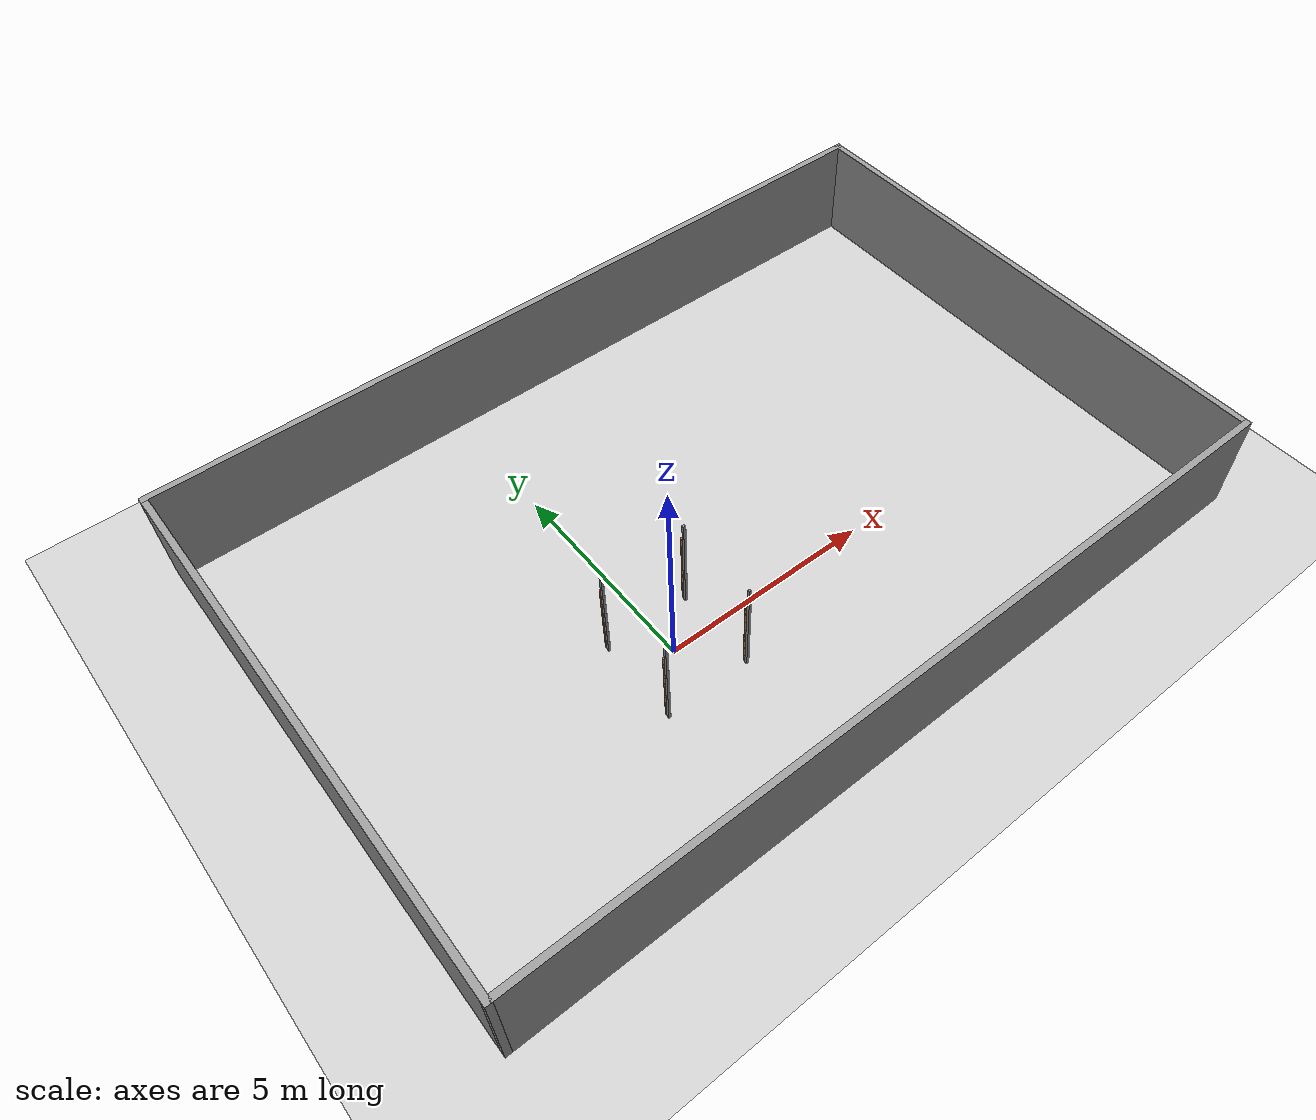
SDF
<sdf version="1.7">
 <world name="default">
  <model name="ground_plane">
   <static>1</static>
   <link name="link">
    <collision name="collision">
     <geometry><plane><normal>0 0 1</normal><size>100 100</size></plane></geometry>
     <surface><friction><ode><mu>100</mu><mu2>50</mu2></ode></friction></surface>
    </collision>
    <visual name="visual">
     <cast_shadows>0</cast_shadows>
     <geometry><plane><normal>0 0 1</normal><size>100 100</size></plane></geometry>
     <material>
      <script><uri>file://media/materials/scripts/gazebo.material</uri><name>Gazebo/Grey</name></script>
     </material>
    </visual>
   </link>
  </model>
  <model name="recinto">
   <frame name="recinto::__model__" attached_to="recinto::Wall_12">
    <pose relative_to="__model__">2.47399 1.90374 0 0 -0 0</pose>
   </frame>
   <link name="recinto::Wall_12">
    <collision name="Wall_12_Collision">
     <geometry><box><size>19 0.15 2.5</size></box></geometry>
     <pose>0 0 1.25 0 -0 0</pose>
    </collision>
    <visual name="Wall_12_Visual">
     <pose>0 0 1.25 0 -0 0</pose>
     <geometry><box><size>19 0.15 2.5</size></box></geometry>
     <material>
      <script><uri>file://media/materials/scripts/gazebo.material</uri><name>Gazebo/Grey</name></script>
      <ambient>1 1 1 1</ambient>
     </material>
     <meta><layer>0</layer></meta>
    </visual>
    <pose relative_to="recinto::__model__">-0 6.3 0 0 -0 0</pose>
   </link>
   <link name="recinto::Wall_15">
    <collision name="Wall_15_Collision">
     <geometry><box><size>12.75 0.15 2.5</size></box></geometry>
     <pose>0 0 1.25 0 -0 0</pose>
    </collision>
    <visual name="Wall_15_Visual">
     <pose>0 0 1.25 0 -0 0</pose>
     <geometry><box><size>12.75 0.15 2.5</size></box></geometry>
     <material>
      <script><uri>file://media/materials/scripts/gazebo.material</uri><name>Gazebo/Grey</name></script>
      <ambient>1 1 1 1</ambient>
     </material>
     <meta><layer>0</layer></meta>
    </visual>
    <pose relative_to="recinto::__model__">9.425 0 0 0 -0 -1.5708</pose>
   </link>
   <link name="recinto::Wall_16">
    <collision name="Wall_16_Collision">
     <geometry><box><size>19 0.15 2.5</size></box></geometry>
     <pose>0 0 1.25 0 -0 0</pose>
    </collision>
    <visual name="Wall_16_Visual">
     <pose>0 0 1.25 0 -0 0</pose>
     <geometry><box><size>19 0.15 2.5</size></box></geometry>
     <material>
      <script><uri>file://media/materials/scripts/gazebo.material</uri><name>Gazebo/Grey</name></script>
      <ambient>1 1 1 1</ambient>
     </material>
     <meta><layer>0</layer></meta>
    </visual>
    <pose relative_to="recinto::__model__">-0 -6.3 0 0 -0 3.14159</pose>
   </link>
   <link name="recinto::Wall_17">
    <collision name="Wall_17_Collision">
     <geometry><box><size>12.75 0.15 2.5</size></box></geometry>
     <pose>0 0 1.25 0 -0 0</pose>
    </collision>
    <visual name="Wall_17_Visual">
     <pose>0 0 1.25 0 -0 0</pose>
     <geometry><box><size>12.75 0.15 2.5</size></box></geometry>
     <material>
      <script><uri>file://media/materials/scripts/gazebo.material</uri><name>Gazebo/Grey</name></script>
      <ambient>1 1 1 1</ambient>
     </material>
     <meta><layer>0</layer></meta>
    </visual>
    <pose relative_to="recinto::__model__">-9.425 0 0 0 -0 1.5708</pose>
   </link>
   <static>1</static>
  </model>
  <model name="vineyard1_clone_0">
   <pose>-1 -1 0 0 -0 0</pose>
   <frame name="vineyard::__model__" attached_to="vineyard::link">
    <pose relative_to="__model__">0 0 0 0 -0 0</pose>
   </frame>
   <link name="vineyard::link">
    <pose relative_to="vineyard::__model__">0 -0.042492 1.02106 0 -0 0</pose>
    <inertial>
     <mass>0.0175</mass>
     <inertia>
      <ixx>9.75e-06</ixx>
      <ixy>0</ixy>
      <ixz>0</ixz>
      <iyy>9.75e-06</iyy>
      <iyz>0</iyz>
      <izz>8.3e-07</izz>
     </inertia>
    </inertial>
    <visual name="visual">
     <geometry><cylinder><radius>0.025</radius><length>2</length></cylinder></geometry>
     <material>
      <script><uri>file://media/materials/scripts/gazebo.material</uri><name>Gazebo/Wood</name></script>
      <shader type="pixel"><normal_map>__default__</normal_map></shader>
      <ambient>1 1 1 1</ambient>
      <diffuse>1 1 1 1</diffuse>
      <specular>0.2 0.2 0.2 1</specular>
      <emissive>0 0 0 1</emissive>
     </material>
    </visual>
    <collision name="collision">
     <geometry><cylinder><radius>0.025</radius><length>2</length></cylinder></geometry>
     <surface>
      <friction>
       <ode><mu>1</mu><mu2>1</mu2><fdir1>0 0 0</fdir1><slip1>0</slip1><slip2>0</slip2></ode>
       <torsional>
        <coefficient>1</coefficient>
        <patch_radius>0</patch_radius>
        <surface_radius>0.01</surface_radius>
        <use_patch_radius>0</use_patch_radius>
        <ode><slip>0</slip></ode>
       </torsional>
      </friction>
      <bounce><restitution_coefficient>0</restitution_coefficient><threshold>1e+06</threshold></bounce>
      <contact>
       <collide_without_contact>0</collide_without_contact>
       <collide_without_contact_bitmask>1</collide_without_contact_bitmask>
       <collide_bitmask>1</collide_bitmask>
       <ode>
        <soft_cfm>0</soft_cfm>
        <soft_erp>0.2</soft_erp>
        <kp>100000</kp>
        <kd>100</kd>
        <max_vel>100</max_vel>
        <min_depth>0.001</min_depth>
       </ode>
       <bullet>
        <split_impulse>1</split_impulse>
        <split_impulse_penetration_threshold>-0.01</split_impulse_penetration_threshold>
        <soft_cfm>0</soft_cfm>
        <soft_erp>0.2</soft_erp>
        <kp>100000</kp>
        <kd>100</kd>
       </bullet>
      </contact>
     </surface>
    </collision>
   </link>
   <link name="vineyard::link_0">
    <inertial>
     <mass>1</mass>
     <inertia>
      <ixx>0.166667</ixx>
      <ixy>0</ixy>
      <ixz>0</ixz>
      <iyy>0.166667</iyy>
      <iyz>0</iyz>
      <izz>0.166667</izz>
     </inertia>
    </inertial>
    <pose relative_to="vineyard::__model__">-0.005498 -0.128915 1.26447 -1.3e-05 1.5e-05 -0</pose>
    <visual name="visual">
     <geometry><box><size>0.055 0.06 2.5</size></box></geometry>
     <material>
      <lighting>1</lighting>
      <script><uri>file://media/materials/scripts/gazebo.material</uri><name>Gazebo/Grey</name></script>
      <shader type="pixel"><normal_map>__default__</normal_map></shader>
      <ambient>0.3 0.3 0.3 1</ambient>
      <diffuse>0.7 0.7 0.7 1</diffuse>
      <specular>0.01 0.01 0.01 1</specular>
      <emissive>0 0 0 1</emissive>
     </material>
    </visual>
    <collision name="collision">
     <geometry><box><size>0.055 0.06 2.5</size></box></geometry>
     <surface>
      <friction>
       <ode><mu>1</mu><mu2>1</mu2><fdir1>0 0 0</fdir1><slip1>0</slip1><slip2>0</slip2></ode>
       <torsional>
        <coefficient>1</coefficient>
        <patch_radius>0</patch_radius>
        <surface_radius>0</surface_radius>
        <use_patch_radius>1</use_patch_radius>
        <ode><slip>0</slip></ode>
       </torsional>
      </friction>
      <bounce><restitution_coefficient>0</restitution_coefficient><threshold>1e+06</threshold></bounce>
      <contact>
       <collide_without_contact>0</collide_without_contact>
       <collide_without_contact_bitmask>1</collide_without_contact_bitmask>
       <collide_bitmask>1</collide_bitmask>
       <ode>
        <soft_cfm>0</soft_cfm>
        <soft_erp>0.2</soft_erp>
        <kp>1e+13</kp>
        <kd>1</kd>
        <max_vel>0.01</max_vel>
        <min_depth>0</min_depth>
       </ode>
       <bullet>
        <split_impulse>1</split_impulse>
        <split_impulse_penetration_threshold>-0.01</split_impulse_penetration_threshold>
        <soft_cfm>0</soft_cfm>
        <soft_erp>0.2</soft_erp>
        <kp>1e+13</kp>
        <kd>1</kd>
       </bullet>
      </contact>
     </surface>
    </collision>
   </link>
   <static>1</static>
  </model>
  <model name="vineyard1_clone_1">
   <pose>1 -1 0 0 -0 0</pose>
   <frame name="vineyard::__model__" attached_to="vineyard::link">
    <pose relative_to="__model__">0 0 0 0 -0 0</pose>
   </frame>
   <link name="vineyard::link">
    <pose relative_to="vineyard::__model__">0 -0.042492 1.02106 0 -0 0</pose>
    <inertial>
     <mass>0.0175</mass>
     <inertia>
      <ixx>9.75e-06</ixx>
      <ixy>0</ixy>
      <ixz>0</ixz>
      <iyy>9.75e-06</iyy>
      <iyz>0</iyz>
      <izz>8.3e-07</izz>
     </inertia>
    </inertial>
    <visual name="visual">
     <geometry><cylinder><radius>0.025</radius><length>2</length></cylinder></geometry>
     <material>
      <script><uri>file://media/materials/scripts/gazebo.material</uri><name>Gazebo/Wood</name></script>
      <shader type="pixel"><normal_map>__default__</normal_map></shader>
      <ambient>1 1 1 1</ambient>
      <diffuse>1 1 1 1</diffuse>
      <specular>0.2 0.2 0.2 1</specular>
      <emissive>0 0 0 1</emissive>
     </material>
    </visual>
    <collision name="collision">
     <geometry><cylinder><radius>0.025</radius><length>2</length></cylinder></geometry>
     <surface>
      <friction>
       <ode><mu>1</mu><mu2>1</mu2><fdir1>0 0 0</fdir1><slip1>0</slip1><slip2>0</slip2></ode>
       <torsional>
        <coefficient>1</coefficient>
        <patch_radius>0</patch_radius>
        <surface_radius>0.01</surface_radius>
        <use_patch_radius>0</use_patch_radius>
        <ode><slip>0</slip></ode>
       </torsional>
      </friction>
      <bounce><restitution_coefficient>0</restitution_coefficient><threshold>1e+06</threshold></bounce>
      <contact>
       <collide_without_contact>0</collide_without_contact>
       <collide_without_contact_bitmask>1</collide_without_contact_bitmask>
       <collide_bitmask>1</collide_bitmask>
       <ode>
        <soft_cfm>0</soft_cfm>
        <soft_erp>0.2</soft_erp>
        <kp>100000</kp>
        <kd>100</kd>
        <max_vel>100</max_vel>
        <min_depth>0.001</min_depth>
       </ode>
       <bullet>
        <split_impulse>1</split_impulse>
        <split_impulse_penetration_threshold>-0.01</split_impulse_penetration_threshold>
        <soft_cfm>0</soft_cfm>
        <soft_erp>0.2</soft_erp>
        <kp>100000</kp>
        <kd>100</kd>
       </bullet>
      </contact>
     </surface>
    </collision>
   </link>
   <link name="vineyard::link_0">
    <inertial>
     <mass>1</mass>
     <inertia>
      <ixx>0.166667</ixx>
      <ixy>0</ixy>
      <ixz>0</ixz>
      <iyy>0.166667</iyy>
      <iyz>0</iyz>
      <izz>0.166667</izz>
     </inertia>
    </inertial>
    <pose relative_to="vineyard::__model__">-0.005498 -0.128915 1.26447 -1.3e-05 1.5e-05 -0</pose>
    <visual name="visual">
     <geometry><box><size>0.055 0.06 2.5</size></box></geometry>
     <material>
      <lighting>1</lighting>
      <script><uri>file://media/materials/scripts/gazebo.material</uri><name>Gazebo/Grey</name></script>
      <shader type="pixel"><normal_map>__default__</normal_map></shader>
      <ambient>0.3 0.3 0.3 1</ambient>
      <diffuse>0.7 0.7 0.7 1</diffuse>
      <specular>0.01 0.01 0.01 1</specular>
      <emissive>0 0 0 1</emissive>
     </material>
    </visual>
    <collision name="collision">
     <geometry><box><size>0.055 0.06 2.5</size></box></geometry>
     <surface>
      <friction>
       <ode><mu>1</mu><mu2>1</mu2><fdir1>0 0 0</fdir1><slip1>0</slip1><slip2>0</slip2></ode>
       <torsional>
        <coefficient>1</coefficient>
        <patch_radius>0</patch_radius>
        <surface_radius>0</surface_radius>
        <use_patch_radius>1</use_patch_radius>
        <ode><slip>0</slip></ode>
       </torsional>
      </friction>
      <bounce><restitution_coefficient>0</restitution_coefficient><threshold>1e+06</threshold></bounce>
      <contact>
       <collide_without_contact>0</collide_without_contact>
       <collide_without_contact_bitmask>1</collide_without_contact_bitmask>
       <collide_bitmask>1</collide_bitmask>
       <ode>
        <soft_cfm>0</soft_cfm>
        <soft_erp>0.2</soft_erp>
        <kp>1e+13</kp>
        <kd>1</kd>
        <max_vel>0.01</max_vel>
        <min_depth>0</min_depth>
       </ode>
       <bullet>
        <split_impulse>1</split_impulse>
        <split_impulse_penetration_threshold>-0.01</split_impulse_penetration_threshold>
        <soft_cfm>0</soft_cfm>
        <soft_erp>0.2</soft_erp>
        <kp>1e+13</kp>
        <kd>1</kd>
       </bullet>
      </contact>
     </surface>
    </collision>
   </link>
   <static>1</static>
  </model>
  <model name="vineyard1_clone_4">
   <pose>-1 1 0 0 -0 0</pose>
   <frame name="vineyard::__model__" attached_to="vineyard::link">
    <pose relative_to="__model__">0 0 0 0 -0 0</pose>
   </frame>
   <link name="vineyard::link">
    <pose relative_to="vineyard::__model__">0 -0.042492 1.02106 0 -0 0</pose>
    <inertial>
     <mass>0.0175</mass>
     <inertia>
      <ixx>9.75e-06</ixx>
      <ixy>0</ixy>
      <ixz>0</ixz>
      <iyy>9.75e-06</iyy>
      <iyz>0</iyz>
      <izz>8.3e-07</izz>
     </inertia>
    </inertial>
    <visual name="visual">
     <geometry><cylinder><radius>0.025</radius><length>2</length></cylinder></geometry>
     <material>
      <script><uri>file://media/materials/scripts/gazebo.material</uri><name>Gazebo/Wood</name></script>
      <shader type="pixel"><normal_map>__default__</normal_map></shader>
      <ambient>1 1 1 1</ambient>
      <diffuse>1 1 1 1</diffuse>
      <specular>0.2 0.2 0.2 1</specular>
      <emissive>0 0 0 1</emissive>
     </material>
    </visual>
    <collision name="collision">
     <geometry><cylinder><radius>0.025</radius><length>2</length></cylinder></geometry>
     <surface>
      <friction>
       <ode><mu>1</mu><mu2>1</mu2><fdir1>0 0 0</fdir1><slip1>0</slip1><slip2>0</slip2></ode>
       <torsional>
        <coefficient>1</coefficient>
        <patch_radius>0</patch_radius>
        <surface_radius>0.01</surface_radius>
        <use_patch_radius>0</use_patch_radius>
        <ode><slip>0</slip></ode>
       </torsional>
      </friction>
      <bounce><restitution_coefficient>0</restitution_coefficient><threshold>1e+06</threshold></bounce>
      <contact>
       <collide_without_contact>0</collide_without_contact>
       <collide_without_contact_bitmask>1</collide_without_contact_bitmask>
       <collide_bitmask>1</collide_bitmask>
       <ode>
        <soft_cfm>0</soft_cfm>
        <soft_erp>0.2</soft_erp>
        <kp>100000</kp>
        <kd>100</kd>
        <max_vel>100</max_vel>
        <min_depth>0.001</min_depth>
       </ode>
       <bullet>
        <split_impulse>1</split_impulse>
        <split_impulse_penetration_threshold>-0.01</split_impulse_penetration_threshold>
        <soft_cfm>0</soft_cfm>
        <soft_erp>0.2</soft_erp>
        <kp>100000</kp>
        <kd>100</kd>
       </bullet>
      </contact>
     </surface>
    </collision>
   </link>
   <link name="vineyard::link_0">
    <inertial>
     <mass>1</mass>
     <inertia>
      <ixx>0.166667</ixx>
      <ixy>0</ixy>
      <ixz>0</ixz>
      <iyy>0.166667</iyy>
      <iyz>0</iyz>
      <izz>0.166667</izz>
     </inertia>
    </inertial>
    <pose relative_to="vineyard::__model__">-0.005498 -0.128915 1.26447 -1.3e-05 1.5e-05 -0</pose>
    <visual name="visual">
     <geometry><box><size>0.055 0.06 2.5</size></box></geometry>
     <material>
      <lighting>1</lighting>
      <script><uri>file://media/materials/scripts/gazebo.material</uri><name>Gazebo/Grey</name></script>
      <shader type="pixel"><normal_map>__default__</normal_map></shader>
      <ambient>0.3 0.3 0.3 1</ambient>
      <diffuse>0.7 0.7 0.7 1</diffuse>
      <specular>0.01 0.01 0.01 1</specular>
      <emissive>0 0 0 1</emissive>
     </material>
    </visual>
    <collision name="collision">
     <geometry><box><size>0.055 0.06 2.5</size></box></geometry>
     <surface>
      <friction>
       <ode><mu>1</mu><mu2>1</mu2><fdir1>0 0 0</fdir1><slip1>0</slip1><slip2>0</slip2></ode>
       <torsional>
        <coefficient>1</coefficient>
        <patch_radius>0</patch_radius>
        <surface_radius>0</surface_radius>
        <use_patch_radius>1</use_patch_radius>
        <ode><slip>0</slip></ode>
       </torsional>
      </friction>
      <bounce><restitution_coefficient>0</restitution_coefficient><threshold>1e+06</threshold></bounce>
      <contact>
       <collide_without_contact>0</collide_without_contact>
       <collide_without_contact_bitmask>1</collide_without_contact_bitmask>
       <collide_bitmask>1</collide_bitmask>
       <ode>
        <soft_cfm>0</soft_cfm>
        <soft_erp>0.2</soft_erp>
        <kp>1e+13</kp>
        <kd>1</kd>
        <max_vel>0.01</max_vel>
        <min_depth>0</min_depth>
       </ode>
       <bullet>
        <split_impulse>1</split_impulse>
        <split_impulse_penetration_threshold>-0.01</split_impulse_penetration_threshold>
        <soft_cfm>0</soft_cfm>
        <soft_erp>0.2</soft_erp>
        <kp>1e+13</kp>
        <kd>1</kd>
       </bullet>
      </contact>
     </surface>
    </collision>
   </link>
   <static>1</static>
  </model>
  <model name="vineyard1_clone_5">
   <pose>1 1 0 0 -0 0</pose>
   <frame name="vineyard::__model__" attached_to="vineyard::link">
    <pose relative_to="__model__">0 0 0 0 -0 0</pose>
   </frame>
   <link name="vineyard::link">
    <pose relative_to="vineyard::__model__">0 -0.042492 1.02106 0 -0 0</pose>
    <inertial>
     <mass>0.0175</mass>
     <inertia>
      <ixx>9.75e-06</ixx>
      <ixy>0</ixy>
      <ixz>0</ixz>
      <iyy>9.75e-06</iyy>
      <iyz>0</iyz>
      <izz>8.3e-07</izz>
     </inertia>
    </inertial>
    <visual name="visual">
     <geometry><cylinder><radius>0.025</radius><length>2</length></cylinder></geometry>
     <material>
      <script><uri>file://media/materials/scripts/gazebo.material</uri><name>Gazebo/Wood</name></script>
      <shader type="pixel"><normal_map>__default__</normal_map></shader>
      <ambient>1 1 1 1</ambient>
      <diffuse>1 1 1 1</diffuse>
      <specular>0.2 0.2 0.2 1</specular>
      <emissive>0 0 0 1</emissive>
     </material>
    </visual>
    <collision name="collision">
     <geometry><cylinder><radius>0.025</radius><length>2</length></cylinder></geometry>
     <surface>
      <friction>
       <ode><mu>1</mu><mu2>1</mu2><fdir1>0 0 0</fdir1><slip1>0</slip1><slip2>0</slip2></ode>
       <torsional>
        <coefficient>1</coefficient>
        <patch_radius>0</patch_radius>
        <surface_radius>0.01</surface_radius>
        <use_patch_radius>0</use_patch_radius>
        <ode><slip>0</slip></ode>
       </torsional>
      </friction>
      <bounce><restitution_coefficient>0</restitution_coefficient><threshold>1e+06</threshold></bounce>
      <contact>
       <collide_without_contact>0</collide_without_contact>
       <collide_without_contact_bitmask>1</collide_without_contact_bitmask>
       <collide_bitmask>1</collide_bitmask>
       <ode>
        <soft_cfm>0</soft_cfm>
        <soft_erp>0.2</soft_erp>
        <kp>100000</kp>
        <kd>100</kd>
        <max_vel>100</max_vel>
        <min_depth>0.001</min_depth>
       </ode>
       <bullet>
        <split_impulse>1</split_impulse>
        <split_impulse_penetration_threshold>-0.01</split_impulse_penetration_threshold>
        <soft_cfm>0</soft_cfm>
        <soft_erp>0.2</soft_erp>
        <kp>100000</kp>
        <kd>100</kd>
       </bullet>
      </contact>
     </surface>
    </collision>
   </link>
   <link name="vineyard::link_0">
    <inertial>
     <mass>1</mass>
     <inertia>
      <ixx>0.166667</ixx>
      <ixy>0</ixy>
      <ixz>0</ixz>
      <iyy>0.166667</iyy>
      <iyz>0</iyz>
      <izz>0.166667</izz>
     </inertia>
    </inertial>
    <pose relative_to="vineyard::__model__">-0.005498 -0.128915 1.26447 -1.3e-05 1.5e-05 -0</pose>
    <visual name="visual">
     <geometry><box><size>0.055 0.06 2.5</size></box></geometry>
     <material>
      <lighting>1</lighting>
      <script><uri>file://media/materials/scripts/gazebo.material</uri><name>Gazebo/Grey</name></script>
      <shader type="pixel"><normal_map>__default__</normal_map></shader>
      <ambient>0.3 0.3 0.3 1</ambient>
      <diffuse>0.7 0.7 0.7 1</diffuse>
      <specular>0.01 0.01 0.01 1</specular>
      <emissive>0 0 0 1</emissive>
     </material>
    </visual>
    <collision name="collision">
     <geometry><box><size>0.055 0.06 2.5</size></box></geometry>
     <surface>
      <friction>
       <ode><mu>1</mu><mu2>1</mu2><fdir1>0 0 0</fdir1><slip1>0</slip1><slip2>0</slip2></ode>
       <torsional>
        <coefficient>1</coefficient>
        <patch_radius>0</patch_radius>
        <surface_radius>0</surface_radius>
        <use_patch_radius>1</use_patch_radius>
        <ode><slip>0</slip></ode>
       </torsional>
      </friction>
      <bounce><restitution_coefficient>0</restitution_coefficient><threshold>1e+06</threshold></bounce>
      <contact>
       <collide_without_contact>0</collide_without_contact>
       <collide_without_contact_bitmask>1</collide_without_contact_bitmask>
       <collide_bitmask>1</collide_bitmask>
       <ode>
        <soft_cfm>0</soft_cfm>
        <soft_erp>0.2</soft_erp>
        <kp>1e+13</kp>
        <kd>1</kd>
        <max_vel>0.01</max_vel>
        <min_depth>0</min_depth>
       </ode>
       <bullet>
        <split_impulse>1</split_impulse>
        <split_impulse_penetration_threshold>-0.01</split_impulse_penetration_threshold>
        <soft_cfm>0</soft_cfm>
        <soft_erp>0.2</soft_erp>
        <kp>1e+13</kp>
        <kd>1</kd>
       </bullet>
      </contact>
     </surface>
    </collision>
   </link>
   <static>1</static>
  </model>
 </world>
</sdf>
